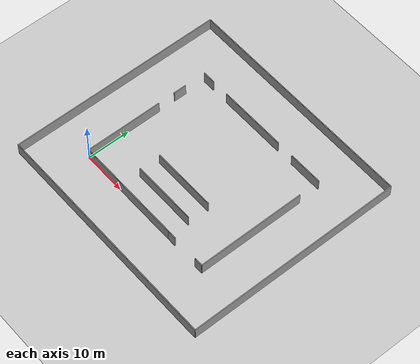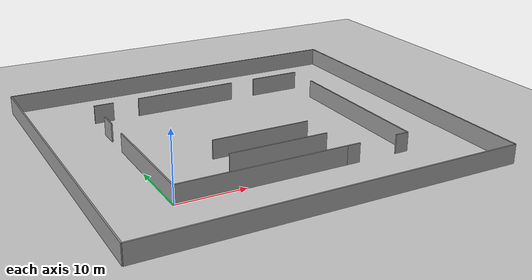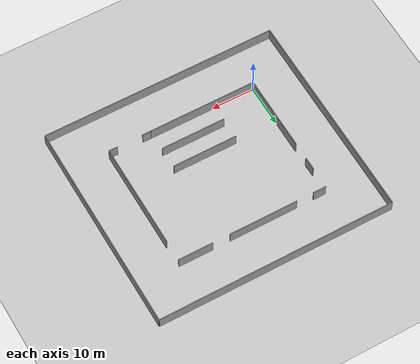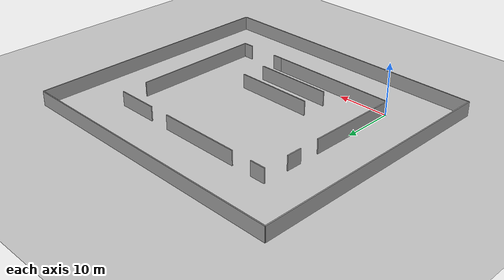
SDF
<?xml version="1.0" ?>
<!-- this file is auto generated using pedsim_gazebo_plugin pkg -->
<sdf version="1.5">
  <world name="default">
    <plugin name="gazebo_ros_state" filename="libgazebo_ros_state.so">
      <ros>
        <namespace>/gazebo_spawner</namespace>
      </ros>
      <update_rate>1.0</update_rate>
    </plugin>
    <!-- Ground Plane -->
    <include>
        <uri>model://ground_plane</uri>
    </include>
    <include>
        <uri>model://sun</uri>
    </include>

    <model name='grey_wall_1'>
      <static>1</static>
      <link name='link'>
    	<pose frame=''>17.5 5.0  1.4 0 0 0.0</pose>

    <collision name='collision'>
      <geometry>
        <box>
        	<size> 15.0 .2  2.8 </size>
		</box>
        </geometry>
        <max_contacts>10</max_contacts>
        <surface>
        <contact>
            <ode/>
        </contact>
        <bounce/>
        <friction>
            <torsional>
            <ode/>
            </torsional>
            <ode/>
        </friction>
        </surface>
    </collision>
    <visual name='visual'>
        <cast_shadows>0</cast_shadows>
        <geometry>
          <box>
        	<size> 15.0 .2  2.8 </size>
		</box>
    </geometry>
        <material>
            <script>
            <uri>model://grey_wall/materials/scripts</uri>
            <uri>model://grey_wall/materials/textures</uri>
            <name>vrc/grey_wall</name>
            </script>
        </material>
        </visual>
        <self_collide>0</self_collide>
        <enable_wind>0</enable_wind>
        <kinematic>0</kinematic>
    </link>
    </model>

    <model name='grey_wall_2'>
      <static>1</static>
      <link name='link'>
    	<pose frame=''>17.5 10.0  1.4 0 0 0.0</pose>

    <collision name='collision'>
      <geometry>
        <box>
        	<size> 15.0 .2  2.8 </size>
		</box>
        </geometry>
        <max_contacts>10</max_contacts>
        <surface>
        <contact>
            <ode/>
        </contact>
        <bounce/>
        <friction>
            <torsional>
            <ode/>
            </torsional>
            <ode/>
        </friction>
        </surface>
    </collision>
    <visual name='visual'>
        <cast_shadows>0</cast_shadows>
        <geometry>
          <box>
        	<size> 15.0 .2  2.8 </size>
		</box>
    </geometry>
        <material>
            <script>
            <uri>model://grey_wall/materials/scripts</uri>
            <uri>model://grey_wall/materials/textures</uri>
            <name>vrc/grey_wall</name>
            </script>
        </material>
        </visual>
        <self_collide>0</self_collide>
        <enable_wind>0</enable_wind>
        <kinematic>0</kinematic>
    </link>
    </model>

    <model name='grey_wall_3'>
      <static>1</static>
      <link name='link'>
    	<pose frame=''>1.5 30.0  1.4 0 0 0.0</pose>

    <collision name='collision'>
      <geometry>
        <box>
        	<size> 3.0 .2  2.8 </size>
		</box>
        </geometry>
        <max_contacts>10</max_contacts>
        <surface>
        <contact>
            <ode/>
        </contact>
        <bounce/>
        <friction>
            <torsional>
            <ode/>
            </torsional>
            <ode/>
        </friction>
        </surface>
    </collision>
    <visual name='visual'>
        <cast_shadows>0</cast_shadows>
        <geometry>
          <box>
        	<size> 3.0 .2  2.8 </size>
		</box>
    </geometry>
        <material>
            <script>
            <uri>model://grey_wall/materials/scripts</uri>
            <uri>model://grey_wall/materials/textures</uri>
            <name>vrc/grey_wall</name>
            </script>
        </material>
        </visual>
        <self_collide>0</self_collide>
        <enable_wind>0</enable_wind>
        <kinematic>0</kinematic>
    </link>
    </model>

    <model name='grey_wall_4'>
      <static>1</static>
      <link name='link'>
    	<pose frame=''>15.0 30.0  1.4 0 0 0.0</pose>

    <collision name='collision'>
      <geometry>
        <box>
        	<size> 16.0 .2  2.8 </size>
		</box>
        </geometry>
        <max_contacts>10</max_contacts>
        <surface>
        <contact>
            <ode/>
        </contact>
        <bounce/>
        <friction>
            <torsional>
            <ode/>
            </torsional>
            <ode/>
        </friction>
        </surface>
    </collision>
    <visual name='visual'>
        <cast_shadows>0</cast_shadows>
        <geometry>
          <box>
        	<size> 16.0 .2  2.8 </size>
		</box>
    </geometry>
        <material>
            <script>
            <uri>model://grey_wall/materials/scripts</uri>
            <uri>model://grey_wall/materials/textures</uri>
            <name>vrc/grey_wall</name>
            </script>
        </material>
        </visual>
        <self_collide>0</self_collide>
        <enable_wind>0</enable_wind>
        <kinematic>0</kinematic>
    </link>
    </model>

    <model name='grey_wall_5'>
      <static>1</static>
      <link name='link'>
    	<pose frame=''>31.0 30.0  1.4 0 0 0.0</pose>

    <collision name='collision'>
      <geometry>
        <box>
        	<size> 8.0 .2  2.8 </size>
		</box>
        </geometry>
        <max_contacts>10</max_contacts>
        <surface>
        <contact>
            <ode/>
        </contact>
        <bounce/>
        <friction>
            <torsional>
            <ode/>
            </torsional>
            <ode/>
        </friction>
        </surface>
    </collision>
    <visual name='visual'>
        <cast_shadows>0</cast_shadows>
        <geometry>
          <box>
        	<size> 8.0 .2  2.8 </size>
		</box>
    </geometry>
        <material>
            <script>
            <uri>model://grey_wall/materials/scripts</uri>
            <uri>model://grey_wall/materials/textures</uri>
            <name>vrc/grey_wall</name>
            </script>
        </material>
        </visual>
        <self_collide>0</self_collide>
        <enable_wind>0</enable_wind>
        <kinematic>0</kinematic>
    </link>
    </model>

    <model name='grey_wall_6'>
      <static>1</static>
      <link name='link'>
    	<pose frame=''>26.0 0.0  1.4 0 0 0.0</pose>

    <collision name='collision'>
      <geometry>
        <box>
        	<size> 2.0 .2  2.8 </size>
		</box>
        </geometry>
        <max_contacts>10</max_contacts>
        <surface>
        <contact>
            <ode/>
        </contact>
        <bounce/>
        <friction>
            <torsional>
            <ode/>
            </torsional>
            <ode/>
        </friction>
        </surface>
    </collision>
    <visual name='visual'>
        <cast_shadows>0</cast_shadows>
        <geometry>
          <box>
        	<size> 2.0 .2  2.8 </size>
		</box>
    </geometry>
        <material>
            <script>
            <uri>model://grey_wall/materials/scripts</uri>
            <uri>model://grey_wall/materials/textures</uri>
            <name>vrc/grey_wall</name>
            </script>
        </material>
        </visual>
        <self_collide>0</self_collide>
        <enable_wind>0</enable_wind>
        <kinematic>0</kinematic>
    </link>
    </model>

    <model name='grey_wall_7'>
      <static>1</static>
      <link name='link'>
    	<pose frame=''>34.0 0.0  1.4 0 0 0.0</pose>

    <collision name='collision'>
      <geometry>
        <box>
        	<size> 2.0 .2  2.8 </size>
		</box>
        </geometry>
        <max_contacts>10</max_contacts>
        <surface>
        <contact>
            <ode/>
        </contact>
        <bounce/>
        <friction>
            <torsional>
            <ode/>
            </torsional>
            <ode/>
        </friction>
        </surface>
    </collision>
    <visual name='visual'>
        <cast_shadows>0</cast_shadows>
        <geometry>
          <box>
        	<size> 2.0 .2  2.8 </size>
		</box>
    </geometry>
        <material>
            <script>
            <uri>model://grey_wall/materials/scripts</uri>
            <uri>model://grey_wall/materials/textures</uri>
            <name>vrc/grey_wall</name>
            </script>
        </material>
        </visual>
        <self_collide>0</self_collide>
        <enable_wind>0</enable_wind>
        <kinematic>0</kinematic>
    </link>
    </model>

    <model name='grey_wall_8'>
      <static>1</static>
      <link name='link'>
    	<pose frame=''>35.0 12.5  1.4 0 0 1.57</pose>

    <collision name='collision'>
      <geometry>
        <box>
        	<size> 25.0 .2  2.8 </size>
		</box>
        </geometry>
        <max_contacts>10</max_contacts>
        <surface>
        <contact>
            <ode/>
        </contact>
        <bounce/>
        <friction>
            <torsional>
            <ode/>
            </torsional>
            <ode/>
        </friction>
        </surface>
    </collision>
    <visual name='visual'>
        <cast_shadows>0</cast_shadows>
        <geometry>
          <box>
        	<size> 25.0 .2  2.8 </size>
		</box>
    </geometry>
        <material>
            <script>
            <uri>model://grey_wall/materials/scripts</uri>
            <uri>model://grey_wall/materials/textures</uri>
            <name>vrc/grey_wall</name>
            </script>
        </material>
        </visual>
        <self_collide>0</self_collide>
        <enable_wind>0</enable_wind>
        <kinematic>0</kinematic>
    </link>
    </model>

    <model name='grey_wall_9'>
      <static>1</static>
      <link name='link'>
    	<pose frame=''>12.5 0.0  1.4 0 0 0.0</pose>

    <collision name='collision'>
      <geometry>
        <box>
        	<size> 25.0 .2  2.8 </size>
		</box>
        </geometry>
        <max_contacts>10</max_contacts>
        <surface>
        <contact>
            <ode/>
        </contact>
        <bounce/>
        <friction>
            <torsional>
            <ode/>
            </torsional>
            <ode/>
        </friction>
        </surface>
    </collision>
    <visual name='visual'>
        <cast_shadows>0</cast_shadows>
        <geometry>
          <box>
        	<size> 25.0 .2  2.8 </size>
		</box>
    </geometry>
        <material>
            <script>
            <uri>model://grey_wall/materials/scripts</uri>
            <uri>model://grey_wall/materials/textures</uri>
            <name>vrc/grey_wall</name>
            </script>
        </material>
        </visual>
        <self_collide>0</self_collide>
        <enable_wind>0</enable_wind>
        <kinematic>0</kinematic>
    </link>
    </model>

    <model name='grey_wall_10'>
      <static>1</static>
      <link name='link'>
    	<pose frame=''>0.0 9.0  1.4 0 0 1.57</pose>

    <collision name='collision'>
      <geometry>
        <box>
        	<size> 18.0 .2  2.8 </size>
		</box>
        </geometry>
        <max_contacts>10</max_contacts>
        <surface>
        <contact>
            <ode/>
        </contact>
        <bounce/>
        <friction>
            <torsional>
            <ode/>
            </torsional>
            <ode/>
        </friction>
        </surface>
    </collision>
    <visual name='visual'>
        <cast_shadows>0</cast_shadows>
        <geometry>
          <box>
        	<size> 18.0 .2  2.8 </size>
		</box>
    </geometry>
        <material>
            <script>
            <uri>model://grey_wall/materials/scripts</uri>
            <uri>model://grey_wall/materials/textures</uri>
            <name>vrc/grey_wall</name>
            </script>
        </material>
        </visual>
        <self_collide>0</self_collide>
        <enable_wind>0</enable_wind>
        <kinematic>0</kinematic>
    </link>
    </model>

    <model name='grey_wall_11'>
      <static>1</static>
      <link name='link'>
    	<pose frame=''>0.0 23.5  1.4 0 0 1.57</pose>

    <collision name='collision'>
      <geometry>
        <box>
        	<size> 3.0 .2  2.8 </size>
		</box>
        </geometry>
        <max_contacts>10</max_contacts>
        <surface>
        <contact>
            <ode/>
        </contact>
        <bounce/>
        <friction>
            <torsional>
            <ode/>
            </torsional>
            <ode/>
        </friction>
        </surface>
    </collision>
    <visual name='visual'>
        <cast_shadows>0</cast_shadows>
        <geometry>
          <box>
        	<size> 3.0 .2  2.8 </size>
		</box>
    </geometry>
        <material>
            <script>
            <uri>model://grey_wall/materials/scripts</uri>
            <uri>model://grey_wall/materials/textures</uri>
            <name>vrc/grey_wall</name>
            </script>
        </material>
        </visual>
        <self_collide>0</self_collide>
        <enable_wind>0</enable_wind>
        <kinematic>0</kinematic>
    </link>
    </model>

    <model name='grey_wall_12'>
      <static>1</static>
      <link name='link'>
    	<pose frame=''>-10.0 15.0  1.4 0 0 1.57</pose>

    <collision name='collision'>
      <geometry>
        <box>
        	<size> 50.0 .2  2.8 </size>
		</box>
        </geometry>
        <max_contacts>10</max_contacts>
        <surface>
        <contact>
            <ode/>
        </contact>
        <bounce/>
        <friction>
            <torsional>
            <ode/>
            </torsional>
            <ode/>
        </friction>
        </surface>
    </collision>
    <visual name='visual'>
        <cast_shadows>0</cast_shadows>
        <geometry>
          <box>
        	<size> 50.0 .2  2.8 </size>
		</box>
    </geometry>
        <material>
            <script>
            <uri>model://grey_wall/materials/scripts</uri>
            <uri>model://grey_wall/materials/textures</uri>
            <name>vrc/grey_wall</name>
            </script>
        </material>
        </visual>
        <self_collide>0</self_collide>
        <enable_wind>0</enable_wind>
        <kinematic>0</kinematic>
    </link>
    </model>

    <model name='grey_wall_13'>
      <static>1</static>
      <link name='link'>
    	<pose frame=''>17.5 -10.0  1.4 0 0 0.0</pose>

    <collision name='collision'>
      <geometry>
        <box>
        	<size> 55.0 .2  2.8 </size>
		</box>
        </geometry>
        <max_contacts>10</max_contacts>
        <surface>
        <contact>
            <ode/>
        </contact>
        <bounce/>
        <friction>
            <torsional>
            <ode/>
            </torsional>
            <ode/>
        </friction>
        </surface>
    </collision>
    <visual name='visual'>
        <cast_shadows>0</cast_shadows>
        <geometry>
          <box>
        	<size> 55.0 .2  2.8 </size>
		</box>
    </geometry>
        <material>
            <script>
            <uri>model://grey_wall/materials/scripts</uri>
            <uri>model://grey_wall/materials/textures</uri>
            <name>vrc/grey_wall</name>
            </script>
        </material>
        </visual>
        <self_collide>0</self_collide>
        <enable_wind>0</enable_wind>
        <kinematic>0</kinematic>
    </link>
    </model>

    <model name='grey_wall_14'>
      <static>1</static>
      <link name='link'>
    	<pose frame=''>17.5 40.0  1.4 0 0 0.0</pose>

    <collision name='collision'>
      <geometry>
        <box>
        	<size> 55.0 .2  2.8 </size>
		</box>
        </geometry>
        <max_contacts>10</max_contacts>
        <surface>
        <contact>
            <ode/>
        </contact>
        <bounce/>
        <friction>
            <torsional>
            <ode/>
            </torsional>
            <ode/>
        </friction>
        </surface>
    </collision>
    <visual name='visual'>
        <cast_shadows>0</cast_shadows>
        <geometry>
          <box>
        	<size> 55.0 .2  2.8 </size>
		</box>
    </geometry>
        <material>
            <script>
            <uri>model://grey_wall/materials/scripts</uri>
            <uri>model://grey_wall/materials/textures</uri>
            <name>vrc/grey_wall</name>
            </script>
        </material>
        </visual>
        <self_collide>0</self_collide>
        <enable_wind>0</enable_wind>
        <kinematic>0</kinematic>
    </link>
    </model>

    <model name='grey_wall_15'>
      <static>1</static>
      <link name='link'>
    	<pose frame=''>45.0 15.0  1.4 0 0 1.57</pose>

    <collision name='collision'>
      <geometry>
        <box>
        	<size> 50.0 .2  2.8 </size>
		</box>
        </geometry>
        <max_contacts>10</max_contacts>
        <surface>
        <contact>
            <ode/>
        </contact>
        <bounce/>
        <friction>
            <torsional>
            <ode/>
            </torsional>
            <ode/>
        </friction>
        </surface>
    </collision>
    <visual name='visual'>
        <cast_shadows>0</cast_shadows>
        <geometry>
          <box>
        	<size> 50.0 .2  2.8 </size>
		</box>
    </geometry>
        <material>
            <script>
            <uri>model://grey_wall/materials/scripts</uri>
            <uri>model://grey_wall/materials/textures</uri>
            <name>vrc/grey_wall</name>
            </script>
        </material>
        </visual>
        <self_collide>0</self_collide>
        <enable_wind>0</enable_wind>
        <kinematic>0</kinematic>
    </link>
    </model>

  </world>
</sdf>
